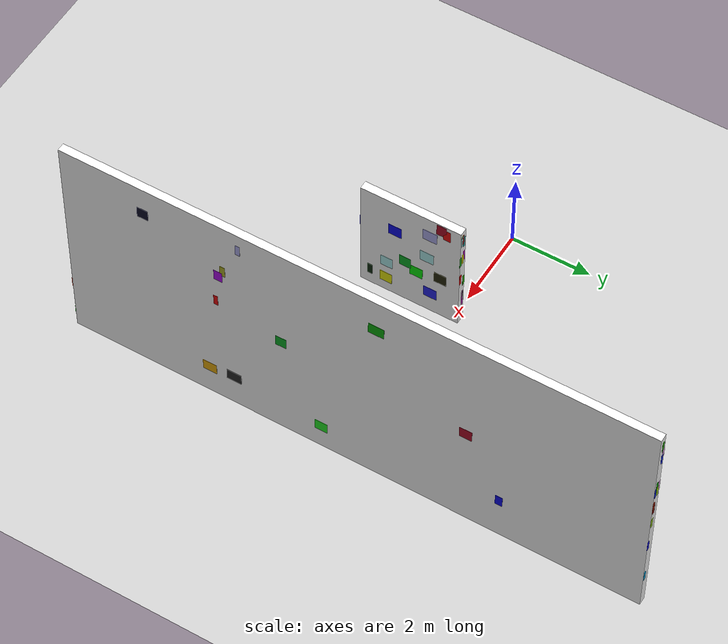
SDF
<sdf version="1.9">
 <world name="default">
  <model name="ground_plane">
   <static>true</static>
   <link name="link">
    <collision name="collision">
     <geometry><plane><normal>0 0 1</normal><size>1 1</size></plane></geometry>
    </collision>
    <visual name="visual">
     <geometry><plane><normal>0 0 1</normal><size>500 500</size></plane></geometry>
     <material>
      <ambient>0.8 0.8 0.8 1</ambient>
      <diffuse>0.8 0.8 0.8 1</diffuse>
      <specular>0.8 0.8 0.8 1</specular>
     </material>
    </visual>
    <inertial>
     <mass>1</mass>
     <inertia><ixx>1</ixx><ixy>0</ixy><ixz>0</ixz><iyy>1</iyy><iyz>0</iyz><izz>1</izz></inertia>
    </inertial>
   </link>
  </model>
  <model name="wall_east">
   <static>true</static>
   <pose>7 0 3 0 0 0</pose>
   <link name="structure">
    <collision name="collision"><geometry><box><size>0.2 14.2 6</size></box></geometry></collision>
    <visual name="surface">
     <geometry><box><size>0.2 14.2 6</size></box></geometry>
     <material>
      <ambient>1 1 1 1</ambient>
      <diffuse>1 1 1 1</diffuse>
      <pbr>
       <metal>
        <albedo_map>model://warehouse_textures/materials/textures/wall_east.png</albedo_map>
        <metalness>0</metalness>
        <roughness>1</roughness>
       </metal>
      </pbr>
     </material>
    </visual>
    <visual name="feature_0_0">
     <pose>-0.10200000000000001 3.9178357231538863 -0.23942794925580735 0 0 0</pose>
     <geometry><box><size>0.004 0.14189132276210312 0.3</size></box></geometry>
     <material><ambient>0.95 0.15 0.95 1</ambient><diffuse>0.95 0.15 0.95 1</diffuse></material>
    </visual>
    <visual name="feature_0_1">
     <pose>-0.10200000000000001 2.248544532041607 2.597786841049812 0 0 0</pose>
     <geometry><box><size>0.004 0.185155461414554 0.3</size></box></geometry>
     <material><ambient>0.7 0.04 0.95 1</ambient><diffuse>0.7 0.04 0.95 1</diffuse></material>
    </visual>
    <visual name="feature_0_2">
     <pose>-0.10200000000000001 -5.159789778848193 -2.6235959311520105 0 0 0</pose>
     <geometry><box><size>0.004 0.10792435688912158 0.3</size></box></geometry>
     <material><ambient>0.95 0.95 0.15 1</ambient><diffuse>0.95 0.95 0.15 1</diffuse></material>
    </visual>
    <visual name="feature_0_3">
     <pose>-0.10200000000000001 -1.1770367301604088 1.7315249909807306 0 0 0</pose>
     <geometry><box><size>0.004 0.3598786949216656 0.3</size></box></geometry>
     <material><ambient>0.04 0.95 0.04 1</ambient><diffuse>0.04 0.95 0.04 1</diffuse></material>
    </visual>
    <visual name="feature_0_4">
     <pose>-0.10200000000000001 -5.601512003683719 1.886318854560181 0 0 0</pose>
     <geometry><box><size>0.004 0.11264673118302052 0.3</size></box></geometry>
     <material><ambient>0.15 0.04 0.95 1</ambient><diffuse>0.15 0.04 0.95 1</diffuse></material>
    </visual>
    <visual name="feature_0_5">
     <pose>-0.10200000000000001 -2.4866485925921693 2.643267252773019 0 0 0</pose>
     <geometry><box><size>0.004 0.3289600401103557 0.3</size></box></geometry>
     <material><ambient>0.95 0.7 0.95 1</ambient><diffuse>0.95 0.7 0.95 1</diffuse></material>
    </visual>
    <visual name="feature_0_6">
     <pose>-0.10200000000000001 5.863397269165957 -2.3947577388200374 0 0 0</pose>
     <geometry><box><size>0.004 0.2095861165336038 0.3</size></box></geometry>
     <material><ambient>0.95 0.04 0.95 1</ambient><diffuse>0.95 0.04 0.95 1</diffuse></material>
    </visual>
    <visual name="feature_0_7">
     <pose>-0.10200000000000001 3.1347513125314146 -2.6983757329268823 0 0 0</pose>
     <geometry><box><size>0.004 0.38176930140246534 0.3</size></box></geometry>
     <material><ambient>0.95 0.7 0.95 1</ambient><diffuse>0.95 0.7 0.95 1</diffuse></material>
    </visual>
    <visual name="feature_0_8">
     <pose>-0.10200000000000001 -5.470990840412469 0.3186491958921458 0 0 0</pose>
     <geometry><box><size>0.004 0.18813824413297156 0.3</size></box></geometry>
     <material><ambient>0.95 0.95 0.95 1</ambient><diffuse>0.95 0.95 0.95 1</diffuse></material>
    </visual>
    <visual name="feature_0_9">
     <pose>-0.10200000000000001 -4.830854888757945 0.4499981496416776 0 0 0</pose>
     <geometry><box><size>0.004 0.10737702104862838 0.3</size></box></geometry>
     <material><ambient>0.15 0.15 0.15 1</ambient><diffuse>0.15 0.15 0.15 1</diffuse></material>
    </visual>
    <visual name="feature_0_10">
     <pose>-0.10200000000000001 -4.715888096258629 1.8814669264913046 0 0 0</pose>
     <geometry><box><size>0.004 0.1619836867270691 0.3</size></box></geometry>
     <material><ambient>0.95 0.15 0.15 1</ambient><diffuse>0.95 0.15 0.15 1</diffuse></material>
    </visual>
    <visual name="feature_0_11">
     <pose>-0.10200000000000001 -1.3653618908001155 -1.880458354740901 0 0 0</pose>
     <geometry><box><size>0.004 0.2429496896069118 0.3</size></box></geometry>
     <material><ambient>0.95 0.7 0.15 1</ambient><diffuse>0.95 0.7 0.15 1</diffuse></material>
    </visual>
    <visual name="feature_1_0">
     <pose>0.10200000000000001 -3.215207384766206 1.3177846946540628 0 0 0</pose>
     <geometry><box><size>0.004 0.21061888112744842 0.3</size></box></geometry>
     <material><ambient>0.7 0.04 0.95 1</ambient><diffuse>0.7 0.04 0.95 1</diffuse></material>
    </visual>
    <visual name="feature_1_1">
     <pose>0.10200000000000001 -5.045410455985666 2.2063860207376136 0 0 0</pose>
     <geometry><box><size>0.004 0.27513421637657054 0.3</size></box></geometry>
     <material><ambient>0.04 0.04 0.15 1</ambient><diffuse>0.04 0.04 0.15 1</diffuse></material>
    </visual>
    <visual name="feature_1_2">
     <pose>0.10200000000000001 -3.553419336964374 -2.1259498442138915 0 0 0</pose>
     <geometry><box><size>0.004 0.35003354443500534 0.3</size></box></geometry>
     <material><ambient>0.95 0.7 0.04 1</ambient><diffuse>0.95 0.7 0.04 1</diffuse></material>
    </visual>
    <visual name="feature_1_3">
     <pose>0.10200000000000001 2.790867838502046 0.03241816002108777 0 0 0</pose>
     <geometry><box><size>0.004 0.30349363258738443 0.3</size></box></geometry>
     <material><ambient>0.7 0.04 0.15 1</ambient><diffuse>0.7 0.04 0.15 1</diffuse></material>
    </visual>
    <visual name="feature_1_4">
     <pose>0.10200000000000001 -2.93062404953227 -2.057010024470475 0 0 0</pose>
     <geometry><box><size>0.004 0.3728433332919928 0.3</size></box></geometry>
     <material><ambient>0.15 0.15 0.15 1</ambient><diffuse>0.15 0.15 0.15 1</diffuse></material>
    </visual>
    <visual name="feature_1_5">
     <pose>0.10200000000000001 -1.694841203794203 0.07388358552824181 0 0 0</pose>
     <geometry><box><size>0.004 0.2664336709840587 0.3</size></box></geometry>
     <material><ambient>0.04 0.7 0.15 1</ambient><diffuse>0.04 0.7 0.15 1</diffuse></material>
    </visual>
    <visual name="feature_1_6">
     <pose>0.10200000000000001 3.6500567521704825 -1.770663625432134 0 0 0</pose>
     <geometry><box><size>0.004 0.17514672766197945 0.3</size></box></geometry>
     <material><ambient>0.04 0.04 0.95 1</ambient><diffuse>0.04 0.04 0.95 1</diffuse></material>
    </visual>
    <visual name="feature_1_7">
     <pose>0.10200000000000001 -3.0994695822400278 1.547897880401421 0 0 0</pose>
     <geometry><box><size>0.004 0.1285859055925925 0.3</size></box></geometry>
     <material><ambient>0.7 0.7 0.15 1</ambient><diffuse>0.7 0.7 0.15 1</diffuse></material>
    </visual>
    <visual name="feature_1_8">
     <pose>0.10200000000000001 -3.303723234747799 0.43109630609461114 0 0 0</pose>
     <geometry><box><size>0.004 0.10858935532779604 0.3</size></box></geometry>
     <material><ambient>0.95 0.04 0.04 1</ambient><diffuse>0.95 0.04 0.04 1</diffuse></material>
    </visual>
    <visual name="feature_1_9">
     <pose>0.10200000000000001 0.6269025367458987 2.0851139675306385 0 0 0</pose>
     <geometry><box><size>0.004 0.37629751187536964 0.3</size></box></geometry>
     <material><ambient>0.04 0.7 0.04 1</ambient><diffuse>0.04 0.7 0.04 1</diffuse></material>
    </visual>
    <visual name="feature_1_10">
     <pose>0.10200000000000001 -2.6976495073365756 2.515020477868731 0 0 0</pose>
     <geometry><box><size>0.004 0.11310534109812008 0.3</size></box></geometry>
     <material><ambient>0.7 0.7 0.95 1</ambient><diffuse>0.7 0.7 0.95 1</diffuse></material>
    </visual>
    <visual name="feature_1_11">
     <pose>0.10200000000000001 -0.7274036900313892 -2.2844395361407632 0 0 0</pose>
     <geometry><box><size>0.004 0.3145879897438352 0.3</size></box></geometry>
     <material><ambient>0.15 0.95 0.15 1</ambient><diffuse>0.15 0.95 0.15 1</diffuse></material>
    </visual>
    <visual name="feature_2_0">
     <pose>0.030321591510859933 -7.101999999999999 -2.2461099457503035 0 0 0</pose>
     <geometry><box><size>0.06999999999999999 0.004 0.3</size></box></geometry>
     <material><ambient>0.15 0.95 0.7 1</ambient><diffuse>0.15 0.95 0.7 1</diffuse></material>
    </visual>
    <visual name="feature_2_1">
     <pose>0.031053473420672537 -7.101999999999999 -1.020780035921137 0 0 0</pose>
     <geometry><box><size>0.06999999999999999 0.004 0.3</size></box></geometry>
     <material><ambient>0.15 0.95 0.15 1</ambient><diffuse>0.15 0.95 0.15 1</diffuse></material>
    </visual>
    <visual name="feature_2_2">
     <pose>0.010723683748403073 -7.101999999999999 2.5800491672008876 0 0 0</pose>
     <geometry><box><size>0.06999999999999999 0.004 0.3</size></box></geometry>
     <material><ambient>0.7 0.04 0.7 1</ambient><diffuse>0.7 0.04 0.7 1</diffuse></material>
    </visual>
    <visual name="feature_2_3">
     <pose>-0.047490979648707736 -7.101999999999999 1.4016530091235104 0 0 0</pose>
     <geometry><box><size>0.06999999999999999 0.004 0.3</size></box></geometry>
     <material><ambient>0.04 0.04 0.15 1</ambient><diffuse>0.04 0.04 0.15 1</diffuse></material>
    </visual>
    <visual name="feature_2_4">
     <pose>0.07786138472605127 -7.101999999999999 -1.4874329970574864 0 0 0</pose>
     <geometry><box><size>0.06999999999999999 0.004 0.3</size></box></geometry>
     <material><ambient>0.95 0.15 0.04 1</ambient><diffuse>0.95 0.15 0.04 1</diffuse></material>
    </visual>
    <visual name="feature_2_5">
     <pose>-0.018443908203377532 -7.101999999999999 -0.11889163192938623 0 0 0</pose>
     <geometry><box><size>0.06999999999999999 0.004 0.3</size></box></geometry>
     <material><ambient>0.04 0.95 0.15 1</ambient><diffuse>0.04 0.95 0.15 1</diffuse></material>
    </visual>
    <visual name="feature_2_6">
     <pose>-0.0020178627598053944 -7.101999999999999 1.7966251486583662 0 0 0</pose>
     <geometry><box><size>0.06999999999999999 0.004 0.3</size></box></geometry>
     <material><ambient>0.7 0.95 0.95 1</ambient><diffuse>0.7 0.95 0.95 1</diffuse></material>
    </visual>
    <visual name="feature_2_7">
     <pose>0.0705698958574366 -7.101999999999999 -2.5121000949316046 0 0 0</pose>
     <geometry><box><size>0.06999999999999999 0.004 0.3</size></box></geometry>
     <material><ambient>0.15 0.95 0.15 1</ambient><diffuse>0.15 0.95 0.15 1</diffuse></material>
    </visual>
    <visual name="feature_2_8">
     <pose>-0.037521912363465554 -7.101999999999999 -2.6973855140228866 0 0 0</pose>
     <geometry><box><size>0.06999999999999999 0.004 0.3</size></box></geometry>
     <material><ambient>0.15 0.95 0.95 1</ambient><diffuse>0.15 0.95 0.95 1</diffuse></material>
    </visual>
    <visual name="feature_2_9">
     <pose>0.05610463733537026 -7.101999999999999 0.7547431508411848 0 0 0</pose>
     <geometry><box><size>0.06999999999999999 0.004 0.3</size></box></geometry>
     <material><ambient>0.95 0.95 0.95 1</ambient><diffuse>0.95 0.95 0.95 1</diffuse></material>
    </visual>
    <visual name="feature_2_10">
     <pose>-0.04852550980525617 -7.101999999999999 1.0366485904182379 0 0 0</pose>
     <geometry><box><size>0.06999999999999999 0.004 0.3</size></box></geometry>
     <material><ambient>0.15 0.04 0.95 1</ambient><diffuse>0.15 0.04 0.95 1</diffuse></material>
    </visual>
    <visual name="feature_2_11">
     <pose>-0.013362612163153709 -7.101999999999999 0.03682141249163928 0 0 0</pose>
     <geometry><box><size>0.06999999999999999 0.004 0.3</size></box></geometry>
     <material><ambient>0.04 0.95 0.95 1</ambient><diffuse>0.04 0.95 0.95 1</diffuse></material>
    </visual>
    <visual name="feature_3_0">
     <pose>-0.030997780367746433 7.101999999999999 2.661931016307885 0 0 0</pose>
     <geometry><box><size>0.06999999999999999 0.004 0.3</size></box></geometry>
     <material><ambient>0.15 0.7 0.04 1</ambient><diffuse>0.15 0.7 0.04 1</diffuse></material>
    </visual>
    <visual name="feature_3_1">
     <pose>0.07141941224342348 7.101999999999999 -0.7770742994680593 0 0 0</pose>
     <geometry><box><size>0.06999999999999999 0.004 0.3</size></box></geometry>
     <material><ambient>0.04 0.04 0.95 1</ambient><diffuse>0.04 0.04 0.95 1</diffuse></material>
    </visual>
    <visual name="feature_3_2">
     <pose>-0.0768313318849458 7.101999999999999 1.2603403348973399 0 0 0</pose>
     <geometry><box><size>0.06999999999999999 0.004 0.3</size></box></geometry>
     <material><ambient>0.95 0.7 0.95 1</ambient><diffuse>0.95 0.7 0.95 1</diffuse></material>
    </visual>
    <visual name="feature_3_3">
     <pose>-0.07376981931180335 7.101999999999999 2.405054611475088 0 0 0</pose>
     <geometry><box><size>0.06999999999999999 0.004 0.3</size></box></geometry>
     <material><ambient>0.95 0.7 0.95 1</ambient><diffuse>0.95 0.7 0.95 1</diffuse></material>
    </visual>
    <visual name="feature_3_4">
     <pose>0.05405259903448399 7.101999999999999 1.1098649010972563 0 0 0</pose>
     <geometry><box><size>0.06999999999999999 0.004 0.3</size></box></geometry>
     <material><ambient>0.04 0.15 0.95 1</ambient><diffuse>0.04 0.15 0.95 1</diffuse></material>
    </visual>
    <visual name="feature_3_5">
     <pose>0.05269651745658745 7.101999999999999 0.6320913630091982 0 0 0</pose>
     <geometry><box><size>0.06999999999999999 0.004 0.3</size></box></geometry>
     <material><ambient>0.7 0.15 0.04 1</ambient><diffuse>0.7 0.15 0.04 1</diffuse></material>
    </visual>
    <visual name="feature_3_6">
     <pose>-0.02850205260600079 7.101999999999999 1.108306751776046 0 0 0</pose>
     <geometry><box><size>0.06999999999999999 0.004 0.3</size></box></geometry>
     <material><ambient>0.7 0.95 0.04 1</ambient><diffuse>0.7 0.95 0.04 1</diffuse></material>
    </visual>
    <visual name="feature_3_7">
     <pose>0.03851074568325473 7.101999999999999 0.5397746193927548 0 0 0</pose>
     <geometry><box><size>0.06999999999999999 0.004 0.3</size></box></geometry>
     <material><ambient>0.7 0.04 0.04 1</ambient><diffuse>0.7 0.04 0.04 1</diffuse></material>
    </visual>
    <visual name="feature_3_8">
     <pose>-0.046063226050189046 7.101999999999999 2.2045703281883897 0 0 0</pose>
     <geometry><box><size>0.06999999999999999 0.004 0.3</size></box></geometry>
     <material><ambient>0.04 0.15 0.95 1</ambient><diffuse>0.04 0.15 0.95 1</diffuse></material>
    </visual>
    <visual name="feature_3_9">
     <pose>0.039816054668243256 7.101999999999999 -1.9539020883463913 0 0 0</pose>
     <geometry><box><size>0.06999999999999999 0.004 0.3</size></box></geometry>
     <material><ambient>0.04 0.7 0.95 1</ambient><diffuse>0.04 0.7 0.95 1</diffuse></material>
    </visual>
    <visual name="feature_3_10">
     <pose>0.003942239389446975 7.101999999999999 1.3023531107784683 0 0 0</pose>
     <geometry><box><size>0.06999999999999999 0.004 0.3</size></box></geometry>
     <material><ambient>0.04 0.7 0.04 1</ambient><diffuse>0.04 0.7 0.04 1</diffuse></material>
    </visual>
    <visual name="feature_3_11">
     <pose>0.041140976275479677 7.101999999999999 0.03912102621192526 0 0 0</pose>
     <geometry><box><size>0.06999999999999999 0.004 0.3</size></box></geometry>
     <material><ambient>0.7 0.95 0.15 1</ambient><diffuse>0.7 0.95 0.15 1</diffuse></material>
    </visual>
   </link>
  </model>
  <model name="door_lintel">
   <static>true</static>
   <pose>4.6 0 4.5 0 0 0</pose>
   <link name="structure">
    <collision name="collision"><geometry><box><size>0.2 2.4 3</size></box></geometry></collision>
    <visual name="surface">
     <geometry><box><size>0.2 2.4 3</size></box></geometry>
     <material>
      <ambient>1 1 1 1</ambient>
      <diffuse>1 1 1 1</diffuse>
      <pbr>
       <metal>
        <albedo_map>model://warehouse_textures/materials/textures/door_lintel.png</albedo_map>
        <metalness>0</metalness>
        <roughness>1</roughness>
       </metal>
      </pbr>
     </material>
    </visual>
    <visual name="feature_0_0">
     <pose>-0.10200000000000001 -0.0815109561514199 0.44111212638515873 0 0 0</pose>
     <geometry><box><size>0.004 0.2869578854761567 0.3</size></box></geometry>
     <material><ambient>0.95 0.15 0.95 1</ambient><diffuse>0.95 0.15 0.95 1</diffuse></material>
    </visual>
    <visual name="feature_0_1">
     <pose>-0.10200000000000001 -0.7242733999883489 -0.37624742401098143 0 0 0</pose>
     <geometry><box><size>0.004 0.27053461584774685 0.3</size></box></geometry>
     <material><ambient>0.04 0.95 0.15 1</ambient><diffuse>0.04 0.95 0.15 1</diffuse></material>
    </visual>
    <visual name="feature_0_2">
     <pose>-0.10200000000000001 -0.09765114166597189 -0.33606049642773583 0 0 0</pose>
     <geometry><box><size>0.004 0.15285831178532397 0.3</size></box></geometry>
     <material><ambient>0.15 0.15 0.95 1</ambient><diffuse>0.15 0.15 0.95 1</diffuse></material>
    </visual>
    <visual name="feature_0_3">
     <pose>-0.10200000000000001 -0.8887867040586971 1.2023462985490583 0 0 0</pose>
     <geometry><box><size>0.004 0.21804514042940776 0.3</size></box></geometry>
     <material><ambient>0.95 0.15 0.7 1</ambient><diffuse>0.95 0.15 0.7 1</diffuse></material>
    </visual>
    <visual name="feature_0_4">
     <pose>-0.10200000000000001 -0.9308647361494224 1.1734225250239767 0 0 0</pose>
     <geometry><box><size>0.004 0.2676913068704049 0.3</size></box></geometry>
     <material><ambient>0.7 0.15 0.15 1</ambient><diffuse>0.7 0.15 0.15 1</diffuse></material>
    </visual>
    <visual name="feature_0_5">
     <pose>-0.10200000000000001 0.28075256595451803 -0.9726446993497642 0 0 0</pose>
     <geometry><box><size>0.004 0.34369675785626674 0.3</size></box></geometry>
     <material><ambient>0.7 0.04 0.15 1</ambient><diffuse>0.7 0.04 0.15 1</diffuse></material>
    </visual>
    <visual name="feature_0_6">
     <pose>-0.10200000000000001 -0.06310131542292663 0.2750030751554233 0 0 0</pose>
     <geometry><box><size>0.004 0.3481774075902315 0.3</size></box></geometry>
     <material><ambient>0.15 0.95 0.04 1</ambient><diffuse>0.15 0.95 0.04 1</diffuse></material>
    </visual>
    <visual name="feature_0_7">
     <pose>-0.10200000000000001 -0.13449834050690257 0.8907698363799876 0 0 0</pose>
     <geometry><box><size>0.004 0.1861561084517646 0.3</size></box></geometry>
     <material><ambient>0.7 0.04 0.95 1</ambient><diffuse>0.7 0.04 0.95 1</diffuse></material>
    </visual>
    <visual name="feature_0_8">
     <pose>-0.10200000000000001 -0.5452051516379665 0.9141707169284357 0 0 0</pose>
     <geometry><box><size>0.004 0.33185339265883335 0.3</size></box></geometry>
     <material><ambient>0.15 0.15 0.7 1</ambient><diffuse>0.15 0.15 0.7 1</diffuse></material>
    </visual>
    <visual name="feature_0_9">
     <pose>-0.10200000000000001 -0.8630001692625842 -0.3317376933076275 0 0 0</pose>
     <geometry><box><size>0.004 0.3275137010879305 0.3</size></box></geometry>
     <material><ambient>0.95 0.7 0.7 1</ambient><diffuse>0.95 0.7 0.7 1</diffuse></material>
    </visual>
    <visual name="feature_0_10">
     <pose>-0.10200000000000001 -0.328040051371829 -0.2152922194738911 0 0 0</pose>
     <geometry><box><size>0.004 0.13874404597352638 0.3</size></box></geometry>
     <material><ambient>0.7 0.04 0.04 1</ambient><diffuse>0.7 0.04 0.04 1</diffuse></material>
    </visual>
    <visual name="feature_0_11">
     <pose>-0.10200000000000001 0.9181740087655204 -0.2902849003515695 0 0 0</pose>
     <geometry><box><size>0.004 0.25946778733741266 0.3</size></box></geometry>
     <material><ambient>0.95 0.15 0.7 1</ambient><diffuse>0.95 0.15 0.7 1</diffuse></material>
    </visual>
    <visual name="feature_1_0">
     <pose>0.10200000000000001 0.8727459691419421 1.2415507093245455 0 0 0</pose>
     <geometry><box><size>0.004 0.17355437571640286 0.3</size></box></geometry>
     <material><ambient>0.95 0.04 0.04 1</ambient><diffuse>0.95 0.04 0.04 1</diffuse></material>
    </visual>
    <visual name="feature_1_1">
     <pose>0.10200000000000001 -0.10715043098940524 -0.24896200645893063 0 0 0</pose>
     <geometry><box><size>0.004 0.2755235783954311 0.3</size></box></geometry>
     <material><ambient>0.04 0.7 0.15 1</ambient><diffuse>0.04 0.7 0.15 1</diffuse></material>
    </visual>
    <visual name="feature_1_2">
     <pose>0.10200000000000001 -0.3578196728893923 0.60929071837453 0 0 0</pose>
     <geometry><box><size>0.004 0.31634825054920324 0.3</size></box></geometry>
     <material><ambient>0.04 0.04 0.95 1</ambient><diffuse>0.04 0.04 0.95 1</diffuse></material>
    </visual>
    <visual name="feature_1_3">
     <pose>0.10200000000000001 0.4709239689066065 0.9687833498376288 0 0 0</pose>
     <geometry><box><size>0.004 0.34726436164829727 0.3</size></box></geometry>
     <material><ambient>0.7 0.7 0.95 1</ambient><diffuse>0.7 0.7 0.95 1</diffuse></material>
    </visual>
    <visual name="feature_1_4">
     <pose>0.10200000000000001 0.7441542657542697 1.3155717775031017 0 0 0</pose>
     <geometry><box><size>0.004 0.23577364431151007 0.3</size></box></geometry>
     <material><ambient>0.7 0.04 0.15 1</ambient><diffuse>0.7 0.04 0.15 1</diffuse></material>
    </visual>
    <visual name="feature_1_5">
     <pose>0.10200000000000001 -0.9624262174591318 -1.0503127412822537 0 0 0</pose>
     <geometry><box><size>0.004 0.13173447095640395 0.3</size></box></geometry>
     <material><ambient>0.04 0.15 0.04 1</ambient><diffuse>0.04 0.15 0.04 1</diffuse></material>
    </visual>
    <visual name="feature_1_6">
     <pose>0.10200000000000001 0.5117654994164498 -0.9093327461135352 0 0 0</pose>
     <geometry><box><size>0.004 0.32210729963487783 0.3</size></box></geometry>
     <material><ambient>0.15 0.15 0.95 1</ambient><diffuse>0.15 0.15 0.95 1</diffuse></material>
    </visual>
    <visual name="feature_1_7">
     <pose>0.10200000000000001 0.7409418943383121 -0.2812769942077813 0 0 0</pose>
     <geometry><box><size>0.004 0.2945552815533874 0.3</size></box></geometry>
     <material><ambient>0.15 0.15 0.04 1</ambient><diffuse>0.15 0.15 0.04 1</diffuse></material>
    </visual>
    <visual name="feature_1_8">
     <pose>0.10200000000000001 -0.5670265039074693 -1.0800555995695198 0 0 0</pose>
     <geometry><box><size>0.004 0.28959491968531353 0.3</size></box></geometry>
     <material><ambient>0.95 0.95 0.04 1</ambient><diffuse>0.95 0.95 0.04 1</diffuse></material>
    </visual>
    <visual name="feature_1_9">
     <pose>0.10200000000000001 -0.5573267370171198 -0.5547783204191197 0 0 0</pose>
     <geometry><box><size>0.004 0.29813050692646614 0.3</size></box></geometry>
     <material><ambient>0.7 0.95 0.95 1</ambient><diffuse>0.7 0.95 0.95 1</diffuse></material>
    </visual>
    <visual name="feature_1_10">
     <pose>0.10200000000000001 0.16391290357379518 -0.4159001629177076 0 0 0</pose>
     <geometry><box><size>0.004 0.31340018167227857 0.3</size></box></geometry>
     <material><ambient>0.04 0.95 0.04 1</ambient><diffuse>0.04 0.95 0.04 1</diffuse></material>
    </visual>
    <visual name="feature_1_11">
     <pose>0.10200000000000001 0.41088708008877917 0.23603670388327025 0 0 0</pose>
     <geometry><box><size>0.004 0.3358948531379189 0.3</size></box></geometry>
     <material><ambient>0.7 0.95 0.95 1</ambient><diffuse>0.7 0.95 0.95 1</diffuse></material>
    </visual>
    <visual name="feature_2_0">
     <pose>0.00475929949602763 -1.202 1.0944532573770598 0 0 0</pose>
     <geometry><box><size>0.06999999999999999 0.004 0.3</size></box></geometry>
     <material><ambient>0.7 0.95 0.15 1</ambient><diffuse>0.7 0.95 0.15 1</diffuse></material>
    </visual>
    <visual name="feature_2_1">
     <pose>0.019952407330103977 -1.202 -0.5059901904944473 0 0 0</pose>
     <geometry><box><size>0.06999999999999999 0.004 0.3</size></box></geometry>
     <material><ambient>0.95 0.04 0.7 1</ambient><diffuse>0.95 0.04 0.7 1</diffuse></material>
    </visual>
    <visual name="feature_2_2">
     <pose>0.011076571388062714 -1.202 0.58131863871754 0 0 0</pose>
     <geometry><box><size>0.06999999999999999 0.004 0.3</size></box></geometry>
     <material><ambient>0.95 0.04 0.04 1</ambient><diffuse>0.95 0.04 0.04 1</diffuse></material>
    </visual>
    <visual name="feature_2_3">
     <pose>0.035875845600861 -1.202 0.13507094967731303 0 0 0</pose>
     <geometry><box><size>0.06999999999999999 0.004 0.3</size></box></geometry>
     <material><ambient>0.7 0.7 0.15 1</ambient><diffuse>0.7 0.7 0.15 1</diffuse></material>
    </visual>
    <visual name="feature_2_4">
     <pose>-0.0707039365767736 -1.202 -1.1115130313494719 0 0 0</pose>
     <geometry><box><size>0.06999999999999999 0.004 0.3</size></box></geometry>
     <material><ambient>0.15 0.7 0.95 1</ambient><diffuse>0.15 0.7 0.95 1</diffuse></material>
    </visual>
    <visual name="feature_2_5">
     <pose>-0.046076619908778656 -1.202 -0.9479307126348324 0 0 0</pose>
     <geometry><box><size>0.06999999999999999 0.004 0.3</size></box></geometry>
     <material><ambient>0.15 0.95 0.15 1</ambient><diffuse>0.15 0.95 0.15 1</diffuse></material>
    </visual>
    <visual name="feature_2_6">
     <pose>-0.009681320857755984 -1.202 -0.3005403888405993 0 0 0</pose>
     <geometry><box><size>0.06999999999999999 0.004 0.3</size></box></geometry>
     <material><ambient>0.15 0.95 0.95 1</ambient><diffuse>0.15 0.95 0.95 1</diffuse></material>
    </visual>
    <visual name="feature_2_7">
     <pose>-0.059087841749283825 -1.202 0.49747868877684165 0 0 0</pose>
     <geometry><box><size>0.06999999999999999 0.004 0.3</size></box></geometry>
     <material><ambient>0.15 0.95 0.15 1</ambient><diffuse>0.15 0.95 0.15 1</diffuse></material>
    </visual>
    <visual name="feature_2_8">
     <pose>0.08125387107347741 -1.202 0.46379603350354626 0 0 0</pose>
     <geometry><box><size>0.06999999999999999 0.004 0.3</size></box></geometry>
     <material><ambient>0.15 0.15 0.95 1</ambient><diffuse>0.15 0.15 0.95 1</diffuse></material>
    </visual>
    <visual name="feature_2_9">
     <pose>0.06422056609925954 -1.202 -0.2811401749478335 0 0 0</pose>
     <geometry><box><size>0.06999999999999999 0.004 0.3</size></box></geometry>
     <material><ambient>0.04 0.04 0.04 1</ambient><diffuse>0.04 0.04 0.04 1</diffuse></material>
    </visual>
    <visual name="feature_2_10">
     <pose>-0.013046139808190013 -1.202 0.24202501454378034 0 0 0</pose>
     <geometry><box><size>0.06999999999999999 0.004 0.3</size></box></geometry>
     <material><ambient>0.04 0.15 0.7 1</ambient><diffuse>0.04 0.15 0.7 1</diffuse></material>
    </visual>
    <visual name="feature_2_11">
     <pose>-0.014104785072020232 -1.202 -0.3847142357794191 0 0 0</pose>
     <geometry><box><size>0.06999999999999999 0.004 0.3</size></box></geometry>
     <material><ambient>0.15 0.15 0.7 1</ambient><diffuse>0.15 0.15 0.7 1</diffuse></material>
    </visual>
    <visual name="feature_3_0">
     <pose>-0.03702062971277564 1.202 1.1401431961865045 0 0 0</pose>
     <geometry><box><size>0.06999999999999999 0.004 0.3</size></box></geometry>
     <material><ambient>0.15 0.7 0.7 1</ambient><diffuse>0.15 0.7 0.7 1</diffuse></material>
    </visual>
    <visual name="feature_3_1">
     <pose>-0.043528729154397476 1.202 -0.6696193214256235 0 0 0</pose>
     <geometry><box><size>0.06999999999999999 0.004 0.3</size></box></geometry>
     <material><ambient>0.15 0.04 0.15 1</ambient><diffuse>0.15 0.04 0.15 1</diffuse></material>
    </visual>
    <visual name="feature_3_2">
     <pose>0.08193574026850119 1.202 0.5626667230369033 0 0 0</pose>
     <geometry><box><size>0.06999999999999999 0.004 0.3</size></box></geometry>
     <material><ambient>0.15 0.7 0.15 1</ambient><diffuse>0.15 0.7 0.15 1</diffuse></material>
    </visual>
    <visual name="feature_3_3">
     <pose>-0.004243013008943072 1.202 0.5888076091581613 0 0 0</pose>
     <geometry><box><size>0.06999999999999999 0.004 0.3</size></box></geometry>
     <material><ambient>0.95 0.95 0.04 1</ambient><diffuse>0.95 0.95 0.04 1</diffuse></material>
    </visual>
    <visual name="feature_3_4">
     <pose>0.04030549185084299 1.202 1.209366290949633 0 0 0</pose>
     <geometry><box><size>0.06999999999999999 0.004 0.3</size></box></geometry>
     <material><ambient>0.7 0.95 0.95 1</ambient><diffuse>0.7 0.95 0.95 1</diffuse></material>
    </visual>
    <visual name="feature_3_5">
     <pose>0.0014352549730891617 1.202 1.229114454267617 0 0 0</pose>
     <geometry><box><size>0.06999999999999999 0.004 0.3</size></box></geometry>
     <material><ambient>0.7 0.15 0.15 1</ambient><diffuse>0.7 0.15 0.15 1</diffuse></material>
    </visual>
    <visual name="feature_3_6">
     <pose>-0.0725478675210333 1.202 -0.18608971027562649 0 0 0</pose>
     <geometry><box><size>0.06999999999999999 0.004 0.3</size></box></geometry>
     <material><ambient>0.15 0.7 0.04 1</ambient><diffuse>0.15 0.7 0.04 1</diffuse></material>
    </visual>
    <visual name="feature_3_7">
     <pose>0.014561218386128671 1.202 -1.1918629100834 0 0 0</pose>
     <geometry><box><size>0.06999999999999999 0.004 0.3</size></box></geometry>
     <material><ambient>0.7 0.04 0.15 1</ambient><diffuse>0.7 0.04 0.15 1</diffuse></material>
    </visual>
    <visual name="feature_3_8">
     <pose>-0.05139966481451658 1.202 0.6730392704010058 0 0 0</pose>
     <geometry><box><size>0.06999999999999999 0.004 0.3</size></box></geometry>
     <material><ambient>0.7 0.04 0.7 1</ambient><diffuse>0.7 0.04 0.7 1</diffuse></material>
    </visual>
    <visual name="feature_3_9">
     <pose>-0.04380899819167925 1.202 -0.8470788090040019 0 0 0</pose>
     <geometry><box><size>0.06999999999999999 0.004 0.3</size></box></geometry>
     <material><ambient>0.7 0.15 0.7 1</ambient><diffuse>0.7 0.15 0.7 1</diffuse></material>
    </visual>
    <visual name="feature_3_10">
     <pose>0.03496988209349901 1.202 1.2386772133617892 0 0 0</pose>
     <geometry><box><size>0.06999999999999999 0.004 0.3</size></box></geometry>
     <material><ambient>0.7 0.7 0.04 1</ambient><diffuse>0.7 0.7 0.04 1</diffuse></material>
    </visual>
    <visual name="feature_3_11">
     <pose>0.06258140034654376 1.202 -0.04653014984510717 0 0 0</pose>
     <geometry><box><size>0.06999999999999999 0.004 0.3</size></box></geometry>
     <material><ambient>0.95 0.04 0.04 1</ambient><diffuse>0.95 0.04 0.04 1</diffuse></material>
    </visual>
   </link>
  </model>
  <model name="crate_east">
   <static>true</static>
   <pose>5.4 -2 0.6 0 0 0</pose>
   <link name="structure">
    <collision name="collision"><geometry><box><size>0.7 0.9 1.2</size></box></geometry></collision>
    <visual name="surface">
     <geometry><box><size>0.7 0.9 1.2</size></box></geometry>
     <material>
      <ambient>1 1 1 1</ambient>
      <diffuse>1 1 1 1</diffuse>
      <pbr>
       <metal>
        <albedo_map>model://warehouse_textures/materials/textures/crate_east.png</albedo_map>
        <metalness>0</metalness>
        <roughness>1</roughness>
       </metal>
      </pbr>
     </material>
    </visual>
    <visual name="feature_0_0">
     <pose>-0.352 0.2377363398630542 0.009238408552781463 0 0 0</pose>
     <geometry><box><size>0.004 0.315 0.18</size></box></geometry>
     <material><ambient>0.95 0.95 0.15 1</ambient><diffuse>0.95 0.95 0.15 1</diffuse></material>
    </visual>
    <visual name="feature_0_1">
     <pose>-0.352 0.3068027609729853 -0.49018623878198964 0 0 0</pose>
     <geometry><box><size>0.004 0.315 0.18</size></box></geometry>
     <material><ambient>0.95 0.7 0.04 1</ambient><diffuse>0.95 0.7 0.04 1</diffuse></material>
    </visual>
    <visual name="feature_0_2">
     <pose>-0.352 -0.26070361600333364 0.49351587571285616 0 0 0</pose>
     <geometry><box><size>0.004 0.315 0.18</size></box></geometry>
     <material><ambient>0.95 0.04 0.7 1</ambient><diffuse>0.95 0.04 0.7 1</diffuse></material>
    </visual>
    <visual name="feature_0_3">
     <pose>-0.352 -0.2236652537191755 -0.1468790588122061 0 0 0</pose>
     <geometry><box><size>0.004 0.18330128152221545 0.18</size></box></geometry>
     <material><ambient>0.04 0.7 0.95 1</ambient><diffuse>0.04 0.7 0.95 1</diffuse></material>
    </visual>
    <visual name="feature_0_4">
     <pose>-0.352 -0.005728536561711461 0.06681872797900312 0 0 0</pose>
     <geometry><box><size>0.004 0.10671366242086527 0.18</size></box></geometry>
     <material><ambient>0.7 0.15 0.15 1</ambient><diffuse>0.7 0.15 0.15 1</diffuse></material>
    </visual>
    <visual name="feature_0_5">
     <pose>-0.352 -0.10840269541271247 -0.31095617218672333 0 0 0</pose>
     <geometry><box><size>0.004 0.315 0.18</size></box></geometry>
     <material><ambient>0.7 0.95 0.7 1</ambient><diffuse>0.7 0.95 0.7 1</diffuse></material>
    </visual>
    <visual name="feature_0_6">
     <pose>-0.352 0.18992416745627783 -0.243264358757808 0 0 0</pose>
     <geometry><box><size>0.004 0.315 0.18</size></box></geometry>
     <material><ambient>0.7 0.04 0.7 1</ambient><diffuse>0.7 0.04 0.7 1</diffuse></material>
    </visual>
    <visual name="feature_0_7">
     <pose>-0.352 -0.1451431483327677 0.23208047209396387 0 0 0</pose>
     <geometry><box><size>0.004 0.315 0.18</size></box></geometry>
     <material><ambient>0.15 0.15 0.04 1</ambient><diffuse>0.15 0.15 0.04 1</diffuse></material>
    </visual>
    <visual name="feature_0_8">
     <pose>-0.352 0.2688556269196568 0.4613621977711946 0 0 0</pose>
     <geometry><box><size>0.004 0.315 0.18</size></box></geometry>
     <material><ambient>0.04 0.15 0.15 1</ambient><diffuse>0.04 0.15 0.15 1</diffuse></material>
    </visual>
    <visual name="feature_0_9">
     <pose>-0.352 0.08612119864578882 -0.20110319147063765 0 0 0</pose>
     <geometry><box><size>0.004 0.15824764767142444 0.18</size></box></geometry>
     <material><ambient>0.04 0.95 0.7 1</ambient><diffuse>0.04 0.95 0.7 1</diffuse></material>
    </visual>
    <visual name="feature_0_10">
     <pose>-0.352 0.3026998212849089 0.20672826453409687 0 0 0</pose>
     <geometry><box><size>0.004 0.289712143258112 0.18</size></box></geometry>
     <material><ambient>0.04 0.7 0.95 1</ambient><diffuse>0.04 0.7 0.95 1</diffuse></material>
    </visual>
    <visual name="feature_0_11">
     <pose>-0.352 -0.06849791239266673 0.31799336549391033 0 0 0</pose>
     <geometry><box><size>0.004 0.21549868679404735 0.18</size></box></geometry>
     <material><ambient>0.7 0.15 0.95 1</ambient><diffuse>0.7 0.15 0.95 1</diffuse></material>
    </visual>
    <visual name="feature_1_0">
     <pose>0.352 -0.04278143365670828 0.48181224874537776 0 0 0</pose>
     <geometry><box><size>0.004 0.22182758052989077 0.18</size></box></geometry>
     <material><ambient>0.04 0.7 0.15 1</ambient><diffuse>0.04 0.7 0.15 1</diffuse></material>
    </visual>
    <visual name="feature_1_1">
     <pose>0.352 0.13029134627791972 0.3906008236000079 0 0 0</pose>
     <geometry><box><size>0.004 0.26274647002372936 0.18</size></box></geometry>
     <material><ambient>0.7 0.7 0.7 1</ambient><diffuse>0.7 0.7 0.7 1</diffuse></material>
    </visual>
    <visual name="feature_1_2">
     <pose>0.352 -0.12360930244392737 0.35202272820631575 0 0 0</pose>
     <geometry><box><size>0.004 0.11290392868375033 0.18</size></box></geometry>
     <material><ambient>0.15 0.15 0.95 1</ambient><diffuse>0.15 0.15 0.95 1</diffuse></material>
    </visual>
    <visual name="feature_1_3">
     <pose>0.352 0.10669404195134458 0.008662159196808572 0 0 0</pose>
     <geometry><box><size>0.004 0.27144694376251033 0.18</size></box></geometry>
     <material><ambient>0.04 0.15 0.15 1</ambient><diffuse>0.04 0.15 0.15 1</diffuse></material>
    </visual>
    <visual name="feature_1_4">
     <pose>0.352 0.2939375117948919 0.37058002833267856 0 0 0</pose>
     <geometry><box><size>0.004 0.2594251609344599 0.18</size></box></geometry>
     <material><ambient>0.15 0.04 0.95 1</ambient><diffuse>0.15 0.04 0.95 1</diffuse></material>
    </visual>
    <visual name="feature_1_5">
     <pose>0.352 0.1800513318501532 -0.1363104318025002 0 0 0</pose>
     <geometry><box><size>0.004 0.21035791126723055 0.18</size></box></geometry>
     <material><ambient>0.7 0.04 0.04 1</ambient><diffuse>0.7 0.04 0.04 1</diffuse></material>
    </visual>
    <visual name="feature_1_6">
     <pose>0.352 0.3119539326607029 0.060214340278009426 0 0 0</pose>
     <geometry><box><size>0.004 0.315 0.18</size></box></geometry>
     <material><ambient>0.15 0.04 0.95 1</ambient><diffuse>0.15 0.04 0.95 1</diffuse></material>
    </visual>
    <visual name="feature_1_7">
     <pose>0.352 -0.33144517178572686 -0.31109928414670995 0 0 0</pose>
     <geometry><box><size>0.004 0.2828085753819164 0.18</size></box></geometry>
     <material><ambient>0.95 0.7 0.15 1</ambient><diffuse>0.95 0.7 0.15 1</diffuse></material>
    </visual>
    <visual name="feature_1_8">
     <pose>0.352 -0.23692836529778175 0.06632500752067061 0 0 0</pose>
     <geometry><box><size>0.004 0.13556470855842873 0.18</size></box></geometry>
     <material><ambient>0.95 0.04 0.95 1</ambient><diffuse>0.95 0.04 0.95 1</diffuse></material>
    </visual>
    <visual name="feature_1_9">
     <pose>0.352 0.08538237395309978 0.005522477884690624 0 0 0</pose>
     <geometry><box><size>0.004 0.315 0.18</size></box></geometry>
     <material><ambient>0.04 0.95 0.7 1</ambient><diffuse>0.04 0.95 0.7 1</diffuse></material>
    </visual>
    <visual name="feature_1_10">
     <pose>0.352 0.3702402098351788 0.2721675841267379 0 0 0</pose>
     <geometry><box><size>0.004 0.1606810706237488 0.18</size></box></geometry>
     <material><ambient>0.04 0.04 0.15 1</ambient><diffuse>0.04 0.04 0.15 1</diffuse></material>
    </visual>
    <visual name="feature_1_11">
     <pose>0.352 -0.31925433443916296 -0.02625213835892326 0 0 0</pose>
     <geometry><box><size>0.004 0.21255224989012506 0.18</size></box></geometry>
     <material><ambient>0.95 0.95 0.04 1</ambient><diffuse>0.95 0.95 0.04 1</diffuse></material>
    </visual>
    <visual name="feature_2_0">
     <pose>0.2537506839590052 -0.452 0.14912892003965805 0 0 0</pose>
     <geometry><box><size>0.22000234902787227 0.004 0.18</size></box></geometry>
     <material><ambient>0.7 0.95 0.04 1</ambient><diffuse>0.7 0.95 0.04 1</diffuse></material>
    </visual>
    <visual name="feature_2_1">
     <pose>0.27433474723935897 -0.452 0.35935888072740785 0 0 0</pose>
     <geometry><box><size>0.11736783713406371 0.004 0.18</size></box></geometry>
     <material><ambient>0.04 0.15 0.95 1</ambient><diffuse>0.04 0.15 0.95 1</diffuse></material>
    </visual>
    <visual name="feature_2_2">
     <pose>-0.038082006518519285 -0.452 -0.1900341842843385 0 0 0</pose>
     <geometry><box><size>0.15022072851612817 0.004 0.18</size></box></geometry>
     <material><ambient>0.15 0.15 0.95 1</ambient><diffuse>0.15 0.15 0.95 1</diffuse></material>
    </visual>
    <visual name="feature_2_3">
     <pose>0.2002181727126095 -0.452 0.23793723074868867 0 0 0</pose>
     <geometry><box><size>0.24499999999999997 0.004 0.18</size></box></geometry>
     <material><ambient>0.7 0.04 0.95 1</ambient><diffuse>0.7 0.04 0.95 1</diffuse></material>
    </visual>
    <visual name="feature_2_4">
     <pose>-0.2276994715954645 -0.452 0.45459561943984883 0 0 0</pose>
     <geometry><box><size>0.12339399089982128 0.004 0.18</size></box></geometry>
     <material><ambient>0.7 0.95 0.95 1</ambient><diffuse>0.7 0.95 0.95 1</diffuse></material>
    </visual>
    <visual name="feature_2_5">
     <pose>0.09134649087810182 -0.452 -0.3639701421513065 0 0 0</pose>
     <geometry><box><size>0.16530373645765262 0.004 0.18</size></box></geometry>
     <material><ambient>0.04 0.7 0.95 1</ambient><diffuse>0.04 0.7 0.95 1</diffuse></material>
    </visual>
    <visual name="feature_2_6">
     <pose>-0.23754108359943096 -0.452 0.26365865340427364 0 0 0</pose>
     <geometry><box><size>0.24499999999999997 0.004 0.18</size></box></geometry>
     <material><ambient>0.95 0.7 0.04 1</ambient><diffuse>0.95 0.7 0.04 1</diffuse></material>
    </visual>
    <visual name="feature_2_7">
     <pose>-0.03645931319226764 -0.452 -0.11726273598326592 0 0 0</pose>
     <geometry><box><size>0.24499999999999997 0.004 0.18</size></box></geometry>
     <material><ambient>0.04 0.15 0.7 1</ambient><diffuse>0.04 0.15 0.7 1</diffuse></material>
    </visual>
    <visual name="feature_2_8">
     <pose>0.12369586190348153 -0.452 -0.42586787181801655 0 0 0</pose>
     <geometry><box><size>0.17767174986407297 0.004 0.18</size></box></geometry>
     <material><ambient>0.15 0.15 0.15 1</ambient><diffuse>0.15 0.15 0.15 1</diffuse></material>
    </visual>
    <visual name="feature_2_9">
     <pose>-0.1964576797182212 -0.452 -0.019419234310170452 0 0 0</pose>
     <geometry><box><size>0.24499999999999997 0.004 0.18</size></box></geometry>
     <material><ambient>0.15 0.7 0.7 1</ambient><diffuse>0.15 0.7 0.7 1</diffuse></material>
    </visual>
    <visual name="feature_2_10">
     <pose>-0.03168608935819617 -0.452 -0.4048934030883905 0 0 0</pose>
     <geometry><box><size>0.24499999999999997 0.004 0.18</size></box></geometry>
     <material><ambient>0.7 0.7 0.7 1</ambient><diffuse>0.7 0.7 0.7 1</diffuse></material>
    </visual>
    <visual name="feature_2_11">
     <pose>0.23338870549618457 -0.452 0.3110084152880106 0 0 0</pose>
     <geometry><box><size>0.1510614204368812 0.004 0.18</size></box></geometry>
     <material><ambient>0.15 0.15 0.04 1</ambient><diffuse>0.15 0.15 0.04 1</diffuse></material>
    </visual>
    <visual name="feature_3_0">
     <pose>-0.2623170566029406 0.452 0.06888310979439904 0 0 0</pose>
     <geometry><box><size>0.12236747351694255 0.004 0.18</size></box></geometry>
     <material><ambient>0.7 0.95 0.15 1</ambient><diffuse>0.7 0.95 0.15 1</diffuse></material>
    </visual>
    <visual name="feature_3_1">
     <pose>-0.06347358024797423 0.452 0.027440830287634443 0 0 0</pose>
     <geometry><box><size>0.24499999999999997 0.004 0.18</size></box></geometry>
     <material><ambient>0.7 0.7 0.95 1</ambient><diffuse>0.7 0.7 0.95 1</diffuse></material>
    </visual>
    <visual name="feature_3_2">
     <pose>-0.2903220093673551 0.452 0.05960097390548613 0 0 0</pose>
     <geometry><box><size>0.23270337466134408 0.004 0.18</size></box></geometry>
     <material><ambient>0.7 0.04 0.95 1</ambient><diffuse>0.7 0.04 0.95 1</diffuse></material>
    </visual>
    <visual name="feature_3_3">
     <pose>0.28789517122924674 0.452 -0.2835030415978834 0 0 0</pose>
     <geometry><box><size>0.24499999999999997 0.004 0.18</size></box></geometry>
     <material><ambient>0.95 0.95 0.95 1</ambient><diffuse>0.95 0.95 0.95 1</diffuse></material>
    </visual>
    <visual name="feature_3_4">
     <pose>0.14211441781625966 0.452 0.24966465948353755 0 0 0</pose>
     <geometry><box><size>0.24499999999999997 0.004 0.18</size></box></geometry>
     <material><ambient>0.95 0.04 0.7 1</ambient><diffuse>0.95 0.04 0.7 1</diffuse></material>
    </visual>
    <visual name="feature_3_5">
     <pose>-0.08553683664701253 0.452 0.2274123324157168 0 0 0</pose>
     <geometry><box><size>0.2386071532239749 0.004 0.18</size></box></geometry>
     <material><ambient>0.04 0.7 0.04 1</ambient><diffuse>0.04 0.7 0.04 1</diffuse></material>
    </visual>
    <visual name="feature_3_6">
     <pose>-0.16494878043500988 0.452 -0.37350373232097633 0 0 0</pose>
     <geometry><box><size>0.24499999999999997 0.004 0.18</size></box></geometry>
     <material><ambient>0.04 0.04 0.7 1</ambient><diffuse>0.04 0.04 0.7 1</diffuse></material>
    </visual>
    <visual name="feature_3_7">
     <pose>0.24528492010637665 0.452 -0.11887399631608253 0 0 0</pose>
     <geometry><box><size>0.24499999999999997 0.004 0.18</size></box></geometry>
     <material><ambient>0.15 0.7 0.15 1</ambient><diffuse>0.15 0.7 0.15 1</diffuse></material>
    </visual>
    <visual name="feature_3_8">
     <pose>-0.07623338313373387 0.452 -0.5309712626847166 0 0 0</pose>
     <geometry><box><size>0.24499999999999997 0.004 0.18</size></box></geometry>
     <material><ambient>0.95 0.15 0.04 1</ambient><diffuse>0.95 0.15 0.04 1</diffuse></material>
    </visual>
    <visual name="feature_3_9">
     <pose>0.2925762219863944 0.452 -0.14249488223048984 0 0 0</pose>
     <geometry><box><size>0.17463039791298357 0.004 0.18</size></box></geometry>
     <material><ambient>0.95 0.95 0.15 1</ambient><diffuse>0.95 0.95 0.15 1</diffuse></material>
    </visual>
    <visual name="feature_3_10">
     <pose>-0.22261225410407193 0.452 -0.5082821120586551 0 0 0</pose>
     <geometry><box><size>0.24499999999999997 0.004 0.18</size></box></geometry>
     <material><ambient>0.7 0.04 0.95 1</ambient><diffuse>0.7 0.04 0.95 1</diffuse></material>
    </visual>
    <visual name="feature_3_11">
     <pose>0.20203660917849298 0.452 -0.45754884061338746 0 0 0</pose>
     <geometry><box><size>0.24499999999999997 0.004 0.18</size></box></geometry>
     <material><ambient>0.15 0.95 0.04 1</ambient><diffuse>0.15 0.95 0.04 1</diffuse></material>
    </visual>
   </link>
  </model>
 </world>
</sdf>
